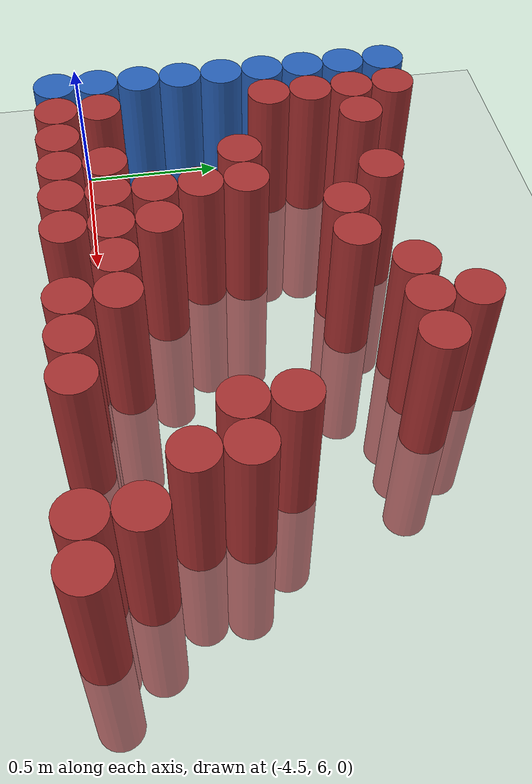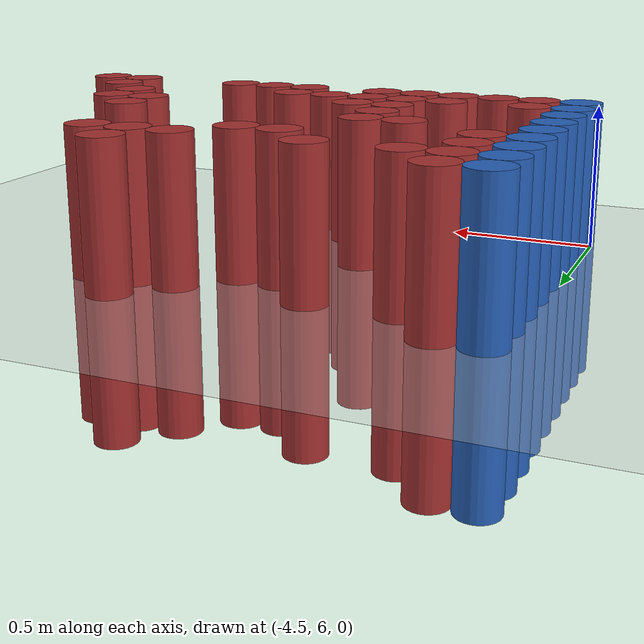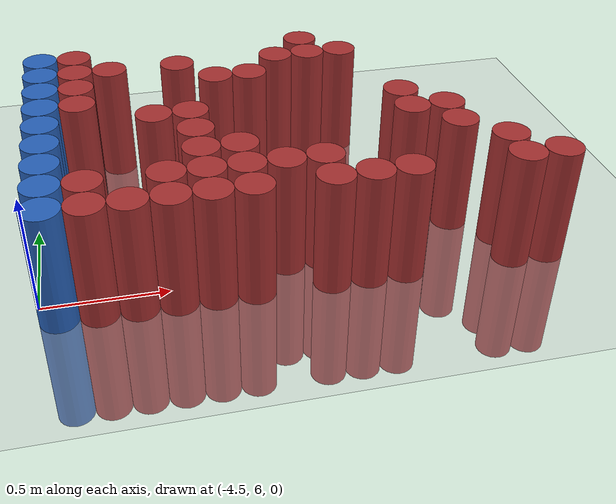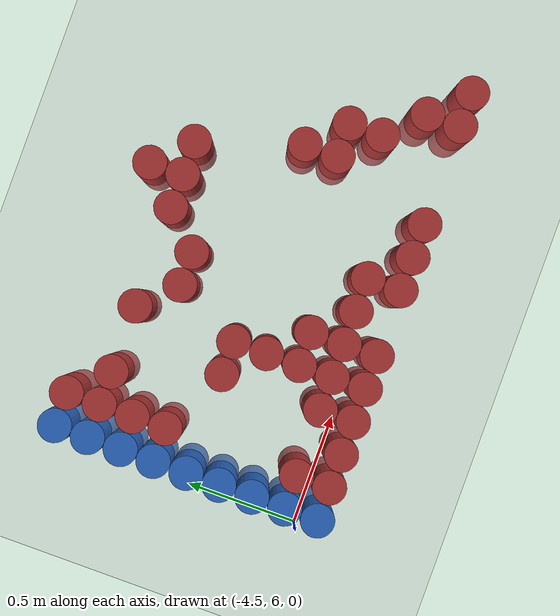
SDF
<sdf version="1.6">
 <world name="default">
  <model name="ground_plane">
   <static>1</static>
   <link name="link">
    <collision name="collision">
     <geometry><plane><normal>0 0 1</normal><size>100 100</size></plane></geometry>
     <surface><friction><ode><mu>100</mu><mu2>50</mu2></ode></friction></surface>
    </collision>
    <visual name="visual">
     <cast_shadows>0</cast_shadows>
     <geometry><plane><normal>0 0 1</normal><size>100 100</size></plane></geometry>
     <material>
      <script><uri>file://media/materials/scripts/gazebo.material</uri><name>Gazebo/Grey</name></script>
     </material>
    </visual>
   </link>
  </model>
  <model name="unit_cylinder_101">
   <static>1</static>
   <pose>-4.425000 5.925000 0.000000 0.000000 0.000000 0.000000</pose>
   <link name="link">
    <inertial>
     <mass>1</mass>
     <inertia><ixx>0.145833</ixx><ixy>0</ixy><ixz>0</ixz><iyy>0.145833</iyy><iyz>0</iyz><izz>0.125</izz></inertia>
    </inertial>
    <collision name="collision">
     <geometry><cylinder><radius>0.075000</radius><length>1</length></cylinder></geometry>
    </collision>
    <visual name="visual">
     <geometry><cylinder><radius>0.075000</radius><length>1</length></cylinder></geometry>
     <material>
      <ambient>0.152000 0.379000 0.720000 1</ambient>
      <diffuse>0.152000 0.379000 0.720000 1</diffuse>
     </material>
     <material>
      <script><name>Gazebo/Grey</name><uri>file://media/materials/scripts/gazebo.material</uri></script>
     </material>
    </visual>
   </link>
  </model>
  <model name="unit_cylinder_102">
   <static>1</static>
   <pose>-4.425000 6.075000 0.000000 0.000000 0.000000 0.000000</pose>
   <link name="link">
    <inertial>
     <mass>1</mass>
     <inertia><ixx>0.145833</ixx><ixy>0</ixy><ixz>0</ixz><iyy>0.145833</iyy><iyz>0</iyz><izz>0.125</izz></inertia>
    </inertial>
    <collision name="collision">
     <geometry><cylinder><radius>0.075000</radius><length>1</length></cylinder></geometry>
    </collision>
    <visual name="visual">
     <geometry><cylinder><radius>0.075000</radius><length>1</length></cylinder></geometry>
     <material>
      <ambient>0.152000 0.379000 0.720000 1</ambient>
      <diffuse>0.152000 0.379000 0.720000 1</diffuse>
     </material>
     <material>
      <script><name>Gazebo/Grey</name><uri>file://media/materials/scripts/gazebo.material</uri></script>
     </material>
    </visual>
   </link>
  </model>
  <model name="unit_cylinder_103">
   <static>1</static>
   <pose>-4.425000 6.225000 0.000000 0.000000 0.000000 0.000000</pose>
   <link name="link">
    <inertial>
     <mass>1</mass>
     <inertia><ixx>0.145833</ixx><ixy>0</ixy><ixz>0</ixz><iyy>0.145833</iyy><iyz>0</iyz><izz>0.125</izz></inertia>
    </inertial>
    <collision name="collision">
     <geometry><cylinder><radius>0.075000</radius><length>1</length></cylinder></geometry>
    </collision>
    <visual name="visual">
     <geometry><cylinder><radius>0.075000</radius><length>1</length></cylinder></geometry>
     <material>
      <ambient>0.152000 0.379000 0.720000 1</ambient>
      <diffuse>0.152000 0.379000 0.720000 1</diffuse>
     </material>
     <material>
      <script><name>Gazebo/Grey</name><uri>file://media/materials/scripts/gazebo.material</uri></script>
     </material>
    </visual>
   </link>
  </model>
  <model name="unit_cylinder_104">
   <static>1</static>
   <pose>-4.425000 6.375000 0.000000 0.000000 0.000000 0.000000</pose>
   <link name="link">
    <inertial>
     <mass>1</mass>
     <inertia><ixx>0.145833</ixx><ixy>0</ixy><ixz>0</ixz><iyy>0.145833</iyy><iyz>0</iyz><izz>0.125</izz></inertia>
    </inertial>
    <collision name="collision">
     <geometry><cylinder><radius>0.075000</radius><length>1</length></cylinder></geometry>
    </collision>
    <visual name="visual">
     <geometry><cylinder><radius>0.075000</radius><length>1</length></cylinder></geometry>
     <material>
      <ambient>0.152000 0.379000 0.720000 1</ambient>
      <diffuse>0.152000 0.379000 0.720000 1</diffuse>
     </material>
     <material>
      <script><name>Gazebo/Grey</name><uri>file://media/materials/scripts/gazebo.material</uri></script>
     </material>
    </visual>
   </link>
  </model>
  <model name="unit_cylinder_105">
   <static>1</static>
   <pose>-4.425000 6.525000 0.000000 0.000000 0.000000 0.000000</pose>
   <link name="link">
    <inertial>
     <mass>1</mass>
     <inertia><ixx>0.145833</ixx><ixy>0</ixy><ixz>0</ixz><iyy>0.145833</iyy><iyz>0</iyz><izz>0.125</izz></inertia>
    </inertial>
    <collision name="collision">
     <geometry><cylinder><radius>0.075000</radius><length>1</length></cylinder></geometry>
    </collision>
    <visual name="visual">
     <geometry><cylinder><radius>0.075000</radius><length>1</length></cylinder></geometry>
     <material>
      <ambient>0.152000 0.379000 0.720000 1</ambient>
      <diffuse>0.152000 0.379000 0.720000 1</diffuse>
     </material>
     <material>
      <script><name>Gazebo/Grey</name><uri>file://media/materials/scripts/gazebo.material</uri></script>
     </material>
    </visual>
   </link>
  </model>
  <model name="unit_cylinder_106">
   <static>1</static>
   <pose>-4.425000 6.675000 0.000000 0.000000 0.000000 0.000000</pose>
   <link name="link">
    <inertial>
     <mass>1</mass>
     <inertia><ixx>0.145833</ixx><ixy>0</ixy><ixz>0</ixz><iyy>0.145833</iyy><iyz>0</iyz><izz>0.125</izz></inertia>
    </inertial>
    <collision name="collision">
     <geometry><cylinder><radius>0.075000</radius><length>1</length></cylinder></geometry>
    </collision>
    <visual name="visual">
     <geometry><cylinder><radius>0.075000</radius><length>1</length></cylinder></geometry>
     <material>
      <ambient>0.152000 0.379000 0.720000 1</ambient>
      <diffuse>0.152000 0.379000 0.720000 1</diffuse>
     </material>
     <material>
      <script><name>Gazebo/Grey</name><uri>file://media/materials/scripts/gazebo.material</uri></script>
     </material>
    </visual>
   </link>
  </model>
  <model name="unit_cylinder_107">
   <static>1</static>
   <pose>-4.425000 6.825000 0.000000 0.000000 0.000000 0.000000</pose>
   <link name="link">
    <inertial>
     <mass>1</mass>
     <inertia><ixx>0.145833</ixx><ixy>0</ixy><ixz>0</ixz><iyy>0.145833</iyy><iyz>0</iyz><izz>0.125</izz></inertia>
    </inertial>
    <collision name="collision">
     <geometry><cylinder><radius>0.075000</radius><length>1</length></cylinder></geometry>
    </collision>
    <visual name="visual">
     <geometry><cylinder><radius>0.075000</radius><length>1</length></cylinder></geometry>
     <material>
      <ambient>0.152000 0.379000 0.720000 1</ambient>
      <diffuse>0.152000 0.379000 0.720000 1</diffuse>
     </material>
     <material>
      <script><name>Gazebo/Grey</name><uri>file://media/materials/scripts/gazebo.material</uri></script>
     </material>
    </visual>
   </link>
  </model>
  <model name="unit_cylinder_108">
   <static>1</static>
   <pose>-4.425000 6.975000 0.000000 0.000000 0.000000 0.000000</pose>
   <link name="link">
    <inertial>
     <mass>1</mass>
     <inertia><ixx>0.145833</ixx><ixy>0</ixy><ixz>0</ixz><iyy>0.145833</iyy><iyz>0</iyz><izz>0.125</izz></inertia>
    </inertial>
    <collision name="collision">
     <geometry><cylinder><radius>0.075000</radius><length>1</length></cylinder></geometry>
    </collision>
    <visual name="visual">
     <geometry><cylinder><radius>0.075000</radius><length>1</length></cylinder></geometry>
     <material>
      <ambient>0.152000 0.379000 0.720000 1</ambient>
      <diffuse>0.152000 0.379000 0.720000 1</diffuse>
     </material>
     <material>
      <script><name>Gazebo/Grey</name><uri>file://media/materials/scripts/gazebo.material</uri></script>
     </material>
    </visual>
   </link>
  </model>
  <model name="unit_cylinder_109">
   <static>1</static>
   <pose>-4.425000 7.125000 0.000000 0.000000 0.000000 0.000000</pose>
   <link name="link">
    <inertial>
     <mass>1</mass>
     <inertia><ixx>0.145833</ixx><ixy>0</ixy><ixz>0</ixz><iyy>0.145833</iyy><iyz>0</iyz><izz>0.125</izz></inertia>
    </inertial>
    <collision name="collision">
     <geometry><cylinder><radius>0.075000</radius><length>1</length></cylinder></geometry>
    </collision>
    <visual name="visual">
     <geometry><cylinder><radius>0.075000</radius><length>1</length></cylinder></geometry>
     <material>
      <ambient>0.152000 0.379000 0.720000 1</ambient>
      <diffuse>0.152000 0.379000 0.720000 1</diffuse>
     </material>
     <material>
      <script><name>Gazebo/Grey</name><uri>file://media/materials/scripts/gazebo.material</uri></script>
     </material>
    </visual>
   </link>
  </model>
  <model name="unit_cylinder_130">
   <static>1</static>
   <pose>-4.275000 5.925000 0.000000 0.000000 0.000000 0.000000</pose>
   <link name="link">
    <inertial>
     <mass>1</mass>
     <inertia><ixx>0.145833</ixx><ixy>0</ixy><ixz>0</ixz><iyy>0.145833</iyy><iyz>0</iyz><izz>0.125</izz></inertia>
    </inertial>
    <collision name="collision">
     <geometry><cylinder><radius>0.075000</radius><length>1</length></cylinder></geometry>
    </collision>
    <visual name="visual">
     <geometry><cylinder><radius>0.075000</radius><length>1</length></cylinder></geometry>
     <material>
      <ambient>0.648000 0.192000 0.192000 1</ambient>
      <diffuse>0.648000 0.192000 0.192000 1</diffuse>
     </material>
     <material>
      <script><name>Gazebo/Grey</name><uri>file://media/materials/scripts/gazebo.material</uri></script>
     </material>
    </visual>
   </link>
  </model>
  <model name="unit_cylinder_131">
   <static>1</static>
   <pose>-4.275000 6.075000 0.000000 0.000000 0.000000 0.000000</pose>
   <link name="link">
    <inertial>
     <mass>1</mass>
     <inertia><ixx>0.145833</ixx><ixy>0</ixy><ixz>0</ixz><iyy>0.145833</iyy><iyz>0</iyz><izz>0.125</izz></inertia>
    </inertial>
    <collision name="collision">
     <geometry><cylinder><radius>0.075000</radius><length>1</length></cylinder></geometry>
    </collision>
    <visual name="visual">
     <geometry><cylinder><radius>0.075000</radius><length>1</length></cylinder></geometry>
     <material>
      <ambient>0.648000 0.192000 0.192000 1</ambient>
      <diffuse>0.648000 0.192000 0.192000 1</diffuse>
     </material>
     <material>
      <script><name>Gazebo/Grey</name><uri>file://media/materials/scripts/gazebo.material</uri></script>
     </material>
    </visual>
   </link>
  </model>
  <model name="unit_cylinder_132">
   <static>1</static>
   <pose>-4.275000 6.675000 0.000000 0.000000 0.000000 0.000000</pose>
   <link name="link">
    <inertial>
     <mass>1</mass>
     <inertia><ixx>0.145833</ixx><ixy>0</ixy><ixz>0</ixz><iyy>0.145833</iyy><iyz>0</iyz><izz>0.125</izz></inertia>
    </inertial>
    <collision name="collision">
     <geometry><cylinder><radius>0.075000</radius><length>1</length></cylinder></geometry>
    </collision>
    <visual name="visual">
     <geometry><cylinder><radius>0.075000</radius><length>1</length></cylinder></geometry>
     <material>
      <ambient>0.648000 0.192000 0.192000 1</ambient>
      <diffuse>0.648000 0.192000 0.192000 1</diffuse>
     </material>
     <material>
      <script><name>Gazebo/Grey</name><uri>file://media/materials/scripts/gazebo.material</uri></script>
     </material>
    </visual>
   </link>
  </model>
  <model name="unit_cylinder_133">
   <static>1</static>
   <pose>-4.275000 6.825000 0.000000 0.000000 0.000000 0.000000</pose>
   <link name="link">
    <inertial>
     <mass>1</mass>
     <inertia><ixx>0.145833</ixx><ixy>0</ixy><ixz>0</ixz><iyy>0.145833</iyy><iyz>0</iyz><izz>0.125</izz></inertia>
    </inertial>
    <collision name="collision">
     <geometry><cylinder><radius>0.075000</radius><length>1</length></cylinder></geometry>
    </collision>
    <visual name="visual">
     <geometry><cylinder><radius>0.075000</radius><length>1</length></cylinder></geometry>
     <material>
      <ambient>0.648000 0.192000 0.192000 1</ambient>
      <diffuse>0.648000 0.192000 0.192000 1</diffuse>
     </material>
     <material>
      <script><name>Gazebo/Grey</name><uri>file://media/materials/scripts/gazebo.material</uri></script>
     </material>
    </visual>
   </link>
  </model>
  <model name="unit_cylinder_134">
   <static>1</static>
   <pose>-4.275000 6.975000 0.000000 0.000000 0.000000 0.000000</pose>
   <link name="link">
    <inertial>
     <mass>1</mass>
     <inertia><ixx>0.145833</ixx><ixy>0</ixy><ixz>0</ixz><iyy>0.145833</iyy><iyz>0</iyz><izz>0.125</izz></inertia>
    </inertial>
    <collision name="collision">
     <geometry><cylinder><radius>0.075000</radius><length>1</length></cylinder></geometry>
    </collision>
    <visual name="visual">
     <geometry><cylinder><radius>0.075000</radius><length>1</length></cylinder></geometry>
     <material>
      <ambient>0.648000 0.192000 0.192000 1</ambient>
      <diffuse>0.648000 0.192000 0.192000 1</diffuse>
     </material>
     <material>
      <script><name>Gazebo/Grey</name><uri>file://media/materials/scripts/gazebo.material</uri></script>
     </material>
    </visual>
   </link>
  </model>
  <model name="unit_cylinder_135">
   <static>1</static>
   <pose>-4.275000 7.125000 0.000000 0.000000 0.000000 0.000000</pose>
   <link name="link">
    <inertial>
     <mass>1</mass>
     <inertia><ixx>0.145833</ixx><ixy>0</ixy><ixz>0</ixz><iyy>0.145833</iyy><iyz>0</iyz><izz>0.125</izz></inertia>
    </inertial>
    <collision name="collision">
     <geometry><cylinder><radius>0.075000</radius><length>1</length></cylinder></geometry>
    </collision>
    <visual name="visual">
     <geometry><cylinder><radius>0.075000</radius><length>1</length></cylinder></geometry>
     <material>
      <ambient>0.648000 0.192000 0.192000 1</ambient>
      <diffuse>0.648000 0.192000 0.192000 1</diffuse>
     </material>
     <material>
      <script><name>Gazebo/Grey</name><uri>file://media/materials/scripts/gazebo.material</uri></script>
     </material>
    </visual>
   </link>
  </model>
  <model name="unit_cylinder_147">
   <static>1</static>
   <pose>-4.125000 5.925000 0.000000 0.000000 0.000000 0.000000</pose>
   <link name="link">
    <inertial>
     <mass>1</mass>
     <inertia><ixx>0.145833</ixx><ixy>0</ixy><ixz>0</ixz><iyy>0.145833</iyy><iyz>0</iyz><izz>0.125</izz></inertia>
    </inertial>
    <collision name="collision">
     <geometry><cylinder><radius>0.075000</radius><length>1</length></cylinder></geometry>
    </collision>
    <visual name="visual">
     <geometry><cylinder><radius>0.075000</radius><length>1</length></cylinder></geometry>
     <material>
      <ambient>0.648000 0.192000 0.192000 1</ambient>
      <diffuse>0.648000 0.192000 0.192000 1</diffuse>
     </material>
     <material>
      <script><name>Gazebo/Grey</name><uri>file://media/materials/scripts/gazebo.material</uri></script>
     </material>
    </visual>
   </link>
  </model>
  <model name="unit_cylinder_148">
   <static>1</static>
   <pose>-4.125000 6.975000 0.000000 0.000000 0.000000 0.000000</pose>
   <link name="link">
    <inertial>
     <mass>1</mass>
     <inertia><ixx>0.145833</ixx><ixy>0</ixy><ixz>0</ixz><iyy>0.145833</iyy><iyz>0</iyz><izz>0.125</izz></inertia>
    </inertial>
    <collision name="collision">
     <geometry><cylinder><radius>0.075000</radius><length>1</length></cylinder></geometry>
    </collision>
    <visual name="visual">
     <geometry><cylinder><radius>0.075000</radius><length>1</length></cylinder></geometry>
     <material>
      <ambient>0.648000 0.192000 0.192000 1</ambient>
      <diffuse>0.648000 0.192000 0.192000 1</diffuse>
     </material>
     <material>
      <script><name>Gazebo/Grey</name><uri>file://media/materials/scripts/gazebo.material</uri></script>
     </material>
    </visual>
   </link>
  </model>
  <model name="unit_cylinder_154">
   <static>1</static>
   <pose>-3.975000 5.925000 0.000000 0.000000 0.000000 0.000000</pose>
   <link name="link">
    <inertial>
     <mass>1</mass>
     <inertia><ixx>0.145833</ixx><ixy>0</ixy><ixz>0</ixz><iyy>0.145833</iyy><iyz>0</iyz><izz>0.125</izz></inertia>
    </inertial>
    <collision name="collision">
     <geometry><cylinder><radius>0.075000</radius><length>1</length></cylinder></geometry>
    </collision>
    <visual name="visual">
     <geometry><cylinder><radius>0.075000</radius><length>1</length></cylinder></geometry>
     <material>
      <ambient>0.648000 0.192000 0.192000 1</ambient>
      <diffuse>0.648000 0.192000 0.192000 1</diffuse>
     </material>
     <material>
      <script><name>Gazebo/Grey</name><uri>file://media/materials/scripts/gazebo.material</uri></script>
     </material>
    </visual>
   </link>
  </model>
  <model name="unit_cylinder_155">
   <static>1</static>
   <pose>-3.975000 6.075000 0.000000 0.000000 0.000000 0.000000</pose>
   <link name="link">
    <inertial>
     <mass>1</mass>
     <inertia><ixx>0.145833</ixx><ixy>0</ixy><ixz>0</ixz><iyy>0.145833</iyy><iyz>0</iyz><izz>0.125</izz></inertia>
    </inertial>
    <collision name="collision">
     <geometry><cylinder><radius>0.075000</radius><length>1</length></cylinder></geometry>
    </collision>
    <visual name="visual">
     <geometry><cylinder><radius>0.075000</radius><length>1</length></cylinder></geometry>
     <material>
      <ambient>0.648000 0.192000 0.192000 1</ambient>
      <diffuse>0.648000 0.192000 0.192000 1</diffuse>
     </material>
     <material>
      <script><name>Gazebo/Grey</name><uri>file://media/materials/scripts/gazebo.material</uri></script>
     </material>
    </visual>
   </link>
  </model>
  <model name="unit_cylinder_156">
   <static>1</static>
   <pose>-3.975000 6.525000 0.000000 0.000000 0.000000 0.000000</pose>
   <link name="link">
    <inertial>
     <mass>1</mass>
     <inertia><ixx>0.145833</ixx><ixy>0</ixy><ixz>0</ixz><iyy>0.145833</iyy><iyz>0</iyz><izz>0.125</izz></inertia>
    </inertial>
    <collision name="collision">
     <geometry><cylinder><radius>0.075000</radius><length>1</length></cylinder></geometry>
    </collision>
    <visual name="visual">
     <geometry><cylinder><radius>0.075000</radius><length>1</length></cylinder></geometry>
     <material>
      <ambient>0.648000 0.192000 0.192000 1</ambient>
      <diffuse>0.648000 0.192000 0.192000 1</diffuse>
     </material>
     <material>
      <script><name>Gazebo/Grey</name><uri>file://media/materials/scripts/gazebo.material</uri></script>
     </material>
    </visual>
   </link>
  </model>
  <model name="unit_cylinder_160">
   <static>1</static>
   <pose>-3.825000 5.925000 0.000000 0.000000 0.000000 0.000000</pose>
   <link name="link">
    <inertial>
     <mass>1</mass>
     <inertia><ixx>0.145833</ixx><ixy>0</ixy><ixz>0</ixz><iyy>0.145833</iyy><iyz>0</iyz><izz>0.125</izz></inertia>
    </inertial>
    <collision name="collision">
     <geometry><cylinder><radius>0.075000</radius><length>1</length></cylinder></geometry>
    </collision>
    <visual name="visual">
     <geometry><cylinder><radius>0.075000</radius><length>1</length></cylinder></geometry>
     <material>
      <ambient>0.648000 0.192000 0.192000 1</ambient>
      <diffuse>0.648000 0.192000 0.192000 1</diffuse>
     </material>
     <material>
      <script><name>Gazebo/Grey</name><uri>file://media/materials/scripts/gazebo.material</uri></script>
     </material>
    </visual>
   </link>
  </model>
  <model name="unit_cylinder_161">
   <static>1</static>
   <pose>-3.825000 6.075000 0.000000 0.000000 0.000000 0.000000</pose>
   <link name="link">
    <inertial>
     <mass>1</mass>
     <inertia><ixx>0.145833</ixx><ixy>0</ixy><ixz>0</ixz><iyy>0.145833</iyy><iyz>0</iyz><izz>0.125</izz></inertia>
    </inertial>
    <collision name="collision">
     <geometry><cylinder><radius>0.075000</radius><length>1</length></cylinder></geometry>
    </collision>
    <visual name="visual">
     <geometry><cylinder><radius>0.075000</radius><length>1</length></cylinder></geometry>
     <material>
      <ambient>0.648000 0.192000 0.192000 1</ambient>
      <diffuse>0.648000 0.192000 0.192000 1</diffuse>
     </material>
     <material>
      <script><name>Gazebo/Grey</name><uri>file://media/materials/scripts/gazebo.material</uri></script>
     </material>
    </visual>
   </link>
  </model>
  <model name="unit_cylinder_162">
   <static>1</static>
   <pose>-3.825000 6.225000 0.000000 0.000000 0.000000 0.000000</pose>
   <link name="link">
    <inertial>
     <mass>1</mass>
     <inertia><ixx>0.145833</ixx><ixy>0</ixy><ixz>0</ixz><iyy>0.145833</iyy><iyz>0</iyz><izz>0.125</izz></inertia>
    </inertial>
    <collision name="collision">
     <geometry><cylinder><radius>0.075000</radius><length>1</length></cylinder></geometry>
    </collision>
    <visual name="visual">
     <geometry><cylinder><radius>0.075000</radius><length>1</length></cylinder></geometry>
     <material>
      <ambient>0.648000 0.192000 0.192000 1</ambient>
      <diffuse>0.648000 0.192000 0.192000 1</diffuse>
     </material>
     <material>
      <script><name>Gazebo/Grey</name><uri>file://media/materials/scripts/gazebo.material</uri></script>
     </material>
    </visual>
   </link>
  </model>
  <model name="unit_cylinder_163">
   <static>1</static>
   <pose>-3.825000 6.375000 0.000000 0.000000 0.000000 0.000000</pose>
   <link name="link">
    <inertial>
     <mass>1</mass>
     <inertia><ixx>0.145833</ixx><ixy>0</ixy><ixz>0</ixz><iyy>0.145833</iyy><iyz>0</iyz><izz>0.125</izz></inertia>
    </inertial>
    <collision name="collision">
     <geometry><cylinder><radius>0.075000</radius><length>1</length></cylinder></geometry>
    </collision>
    <visual name="visual">
     <geometry><cylinder><radius>0.075000</radius><length>1</length></cylinder></geometry>
     <material>
      <ambient>0.648000 0.192000 0.192000 1</ambient>
      <diffuse>0.648000 0.192000 0.192000 1</diffuse>
     </material>
     <material>
      <script><name>Gazebo/Grey</name><uri>file://media/materials/scripts/gazebo.material</uri></script>
     </material>
    </visual>
   </link>
  </model>
  <model name="unit_cylinder_164">
   <static>1</static>
   <pose>-3.825000 6.525000 0.000000 0.000000 0.000000 0.000000</pose>
   <link name="link">
    <inertial>
     <mass>1</mass>
     <inertia><ixx>0.145833</ixx><ixy>0</ixy><ixz>0</ixz><iyy>0.145833</iyy><iyz>0</iyz><izz>0.125</izz></inertia>
    </inertial>
    <collision name="collision">
     <geometry><cylinder><radius>0.075000</radius><length>1</length></cylinder></geometry>
    </collision>
    <visual name="visual">
     <geometry><cylinder><radius>0.075000</radius><length>1</length></cylinder></geometry>
     <material>
      <ambient>0.648000 0.192000 0.192000 1</ambient>
      <diffuse>0.648000 0.192000 0.192000 1</diffuse>
     </material>
     <material>
      <script><name>Gazebo/Grey</name><uri>file://media/materials/scripts/gazebo.material</uri></script>
     </material>
    </visual>
   </link>
  </model>
  <model name="unit_cylinder_165">
   <static>1</static>
   <pose>-3.825000 6.975000 0.000000 0.000000 0.000000 0.000000</pose>
   <link name="link">
    <inertial>
     <mass>1</mass>
     <inertia><ixx>0.145833</ixx><ixy>0</ixy><ixz>0</ixz><iyy>0.145833</iyy><iyz>0</iyz><izz>0.125</izz></inertia>
    </inertial>
    <collision name="collision">
     <geometry><cylinder><radius>0.075000</radius><length>1</length></cylinder></geometry>
    </collision>
    <visual name="visual">
     <geometry><cylinder><radius>0.075000</radius><length>1</length></cylinder></geometry>
     <material>
      <ambient>0.648000 0.192000 0.192000 1</ambient>
      <diffuse>0.648000 0.192000 0.192000 1</diffuse>
     </material>
     <material>
      <script><name>Gazebo/Grey</name><uri>file://media/materials/scripts/gazebo.material</uri></script>
     </material>
    </visual>
   </link>
  </model>
  <model name="unit_cylinder_167">
   <static>1</static>
   <pose>-3.675000 5.925000 0.000000 0.000000 0.000000 0.000000</pose>
   <link name="link">
    <inertial>
     <mass>1</mass>
     <inertia><ixx>0.145833</ixx><ixy>0</ixy><ixz>0</ixz><iyy>0.145833</iyy><iyz>0</iyz><izz>0.125</izz></inertia>
    </inertial>
    <collision name="collision">
     <geometry><cylinder><radius>0.075000</radius><length>1</length></cylinder></geometry>
    </collision>
    <visual name="visual">
     <geometry><cylinder><radius>0.075000</radius><length>1</length></cylinder></geometry>
     <material>
      <ambient>0.648000 0.192000 0.192000 1</ambient>
      <diffuse>0.648000 0.192000 0.192000 1</diffuse>
     </material>
     <material>
      <script><name>Gazebo/Grey</name><uri>file://media/materials/scripts/gazebo.material</uri></script>
     </material>
    </visual>
   </link>
  </model>
  <model name="unit_cylinder_168">
   <static>1</static>
   <pose>-3.675000 6.075000 0.000000 0.000000 0.000000 0.000000</pose>
   <link name="link">
    <inertial>
     <mass>1</mass>
     <inertia><ixx>0.145833</ixx><ixy>0</ixy><ixz>0</ixz><iyy>0.145833</iyy><iyz>0</iyz><izz>0.125</izz></inertia>
    </inertial>
    <collision name="collision">
     <geometry><cylinder><radius>0.075000</radius><length>1</length></cylinder></geometry>
    </collision>
    <visual name="visual">
     <geometry><cylinder><radius>0.075000</radius><length>1</length></cylinder></geometry>
     <material>
      <ambient>0.648000 0.192000 0.192000 1</ambient>
      <diffuse>0.648000 0.192000 0.192000 1</diffuse>
     </material>
     <material>
      <script><name>Gazebo/Grey</name><uri>file://media/materials/scripts/gazebo.material</uri></script>
     </material>
    </visual>
   </link>
  </model>
  <model name="unit_cylinder_169">
   <static>1</static>
   <pose>-3.675000 6.225000 0.000000 0.000000 0.000000 0.000000</pose>
   <link name="link">
    <inertial>
     <mass>1</mass>
     <inertia><ixx>0.145833</ixx><ixy>0</ixy><ixz>0</ixz><iyy>0.145833</iyy><iyz>0</iyz><izz>0.125</izz></inertia>
    </inertial>
    <collision name="collision">
     <geometry><cylinder><radius>0.075000</radius><length>1</length></cylinder></geometry>
    </collision>
    <visual name="visual">
     <geometry><cylinder><radius>0.075000</radius><length>1</length></cylinder></geometry>
     <material>
      <ambient>0.648000 0.192000 0.192000 1</ambient>
      <diffuse>0.648000 0.192000 0.192000 1</diffuse>
     </material>
     <material>
      <script><name>Gazebo/Grey</name><uri>file://media/materials/scripts/gazebo.material</uri></script>
     </material>
    </visual>
   </link>
  </model>
  <model name="unit_cylinder_170">
   <static>1</static>
   <pose>-3.675000 6.825000 0.000000 0.000000 0.000000 0.000000</pose>
   <link name="link">
    <inertial>
     <mass>1</mass>
     <inertia><ixx>0.145833</ixx><ixy>0</ixy><ixz>0</ixz><iyy>0.145833</iyy><iyz>0</iyz><izz>0.125</izz></inertia>
    </inertial>
    <collision name="collision">
     <geometry><cylinder><radius>0.075000</radius><length>1</length></cylinder></geometry>
    </collision>
    <visual name="visual">
     <geometry><cylinder><radius>0.075000</radius><length>1</length></cylinder></geometry>
     <material>
      <ambient>0.648000 0.192000 0.192000 1</ambient>
      <diffuse>0.648000 0.192000 0.192000 1</diffuse>
     </material>
     <material>
      <script><name>Gazebo/Grey</name><uri>file://media/materials/scripts/gazebo.material</uri></script>
     </material>
    </visual>
   </link>
  </model>
  <model name="unit_cylinder_172">
   <static>1</static>
   <pose>-3.525000 6.075000 0.000000 0.000000 0.000000 0.000000</pose>
   <link name="link">
    <inertial>
     <mass>1</mass>
     <inertia><ixx>0.145833</ixx><ixy>0</ixy><ixz>0</ixz><iyy>0.145833</iyy><iyz>0</iyz><izz>0.125</izz></inertia>
    </inertial>
    <collision name="collision">
     <geometry><cylinder><radius>0.075000</radius><length>1</length></cylinder></geometry>
    </collision>
    <visual name="visual">
     <geometry><cylinder><radius>0.075000</radius><length>1</length></cylinder></geometry>
     <material>
      <ambient>0.648000 0.192000 0.192000 1</ambient>
      <diffuse>0.648000 0.192000 0.192000 1</diffuse>
     </material>
     <material>
      <script><name>Gazebo/Grey</name><uri>file://media/materials/scripts/gazebo.material</uri></script>
     </material>
    </visual>
   </link>
  </model>
  <model name="unit_cylinder_173">
   <static>1</static>
   <pose>-3.525000 6.825000 0.000000 0.000000 0.000000 0.000000</pose>
   <link name="link">
    <inertial>
     <mass>1</mass>
     <inertia><ixx>0.145833</ixx><ixy>0</ixy><ixz>0</ixz><iyy>0.145833</iyy><iyz>0</iyz><izz>0.125</izz></inertia>
    </inertial>
    <collision name="collision">
     <geometry><cylinder><radius>0.075000</radius><length>1</length></cylinder></geometry>
    </collision>
    <visual name="visual">
     <geometry><cylinder><radius>0.075000</radius><length>1</length></cylinder></geometry>
     <material>
      <ambient>0.648000 0.192000 0.192000 1</ambient>
      <diffuse>0.648000 0.192000 0.192000 1</diffuse>
     </material>
     <material>
      <script><name>Gazebo/Grey</name><uri>file://media/materials/scripts/gazebo.material</uri></script>
     </material>
    </visual>
   </link>
  </model>
  <model name="unit_cylinder_175">
   <static>1</static>
   <pose>-3.375000 5.925000 0.000000 0.000000 0.000000 0.000000</pose>
   <link name="link">
    <inertial>
     <mass>1</mass>
     <inertia><ixx>0.145833</ixx><ixy>0</ixy><ixz>0</ixz><iyy>0.145833</iyy><iyz>0</iyz><izz>0.125</izz></inertia>
    </inertial>
    <collision name="collision">
     <geometry><cylinder><radius>0.075000</radius><length>1</length></cylinder></geometry>
    </collision>
    <visual name="visual">
     <geometry><cylinder><radius>0.075000</radius><length>1</length></cylinder></geometry>
     <material>
      <ambient>0.648000 0.192000 0.192000 1</ambient>
      <diffuse>0.648000 0.192000 0.192000 1</diffuse>
     </material>
     <material>
      <script><name>Gazebo/Grey</name><uri>file://media/materials/scripts/gazebo.material</uri></script>
     </material>
    </visual>
   </link>
  </model>
  <model name="unit_cylinder_176">
   <static>1</static>
   <pose>-3.375000 6.075000 0.000000 0.000000 0.000000 0.000000</pose>
   <link name="link">
    <inertial>
     <mass>1</mass>
     <inertia><ixx>0.145833</ixx><ixy>0</ixy><ixz>0</ixz><iyy>0.145833</iyy><iyz>0</iyz><izz>0.125</izz></inertia>
    </inertial>
    <collision name="collision">
     <geometry><cylinder><radius>0.075000</radius><length>1</length></cylinder></geometry>
    </collision>
    <visual name="visual">
     <geometry><cylinder><radius>0.075000</radius><length>1</length></cylinder></geometry>
     <material>
      <ambient>0.648000 0.192000 0.192000 1</ambient>
      <diffuse>0.648000 0.192000 0.192000 1</diffuse>
     </material>
     <material>
      <script><name>Gazebo/Grey</name><uri>file://media/materials/scripts/gazebo.material</uri></script>
     </material>
    </visual>
   </link>
  </model>
  <model name="unit_cylinder_177">
   <static>1</static>
   <pose>-3.375000 6.975000 0.000000 0.000000 0.000000 0.000000</pose>
   <link name="link">
    <inertial>
     <mass>1</mass>
     <inertia><ixx>0.145833</ixx><ixy>0</ixy><ixz>0</ixz><iyy>0.145833</iyy><iyz>0</iyz><izz>0.125</izz></inertia>
    </inertial>
    <collision name="collision">
     <geometry><cylinder><radius>0.075000</radius><length>1</length></cylinder></geometry>
    </collision>
    <visual name="visual">
     <geometry><cylinder><radius>0.075000</radius><length>1</length></cylinder></geometry>
     <material>
      <ambient>0.648000 0.192000 0.192000 1</ambient>
      <diffuse>0.648000 0.192000 0.192000 1</diffuse>
     </material>
     <material>
      <script><name>Gazebo/Grey</name><uri>file://media/materials/scripts/gazebo.material</uri></script>
     </material>
    </visual>
   </link>
  </model>
  <model name="unit_cylinder_179">
   <static>1</static>
   <pose>-3.225000 5.925000 0.000000 0.000000 0.000000 0.000000</pose>
   <link name="link">
    <inertial>
     <mass>1</mass>
     <inertia><ixx>0.145833</ixx><ixy>0</ixy><ixz>0</ixz><iyy>0.145833</iyy><iyz>0</iyz><izz>0.125</izz></inertia>
    </inertial>
    <collision name="collision">
     <geometry><cylinder><radius>0.075000</radius><length>1</length></cylinder></geometry>
    </collision>
    <visual name="visual">
     <geometry><cylinder><radius>0.075000</radius><length>1</length></cylinder></geometry>
     <material>
      <ambient>0.648000 0.192000 0.192000 1</ambient>
      <diffuse>0.648000 0.192000 0.192000 1</diffuse>
     </material>
     <material>
      <script><name>Gazebo/Grey</name><uri>file://media/materials/scripts/gazebo.material</uri></script>
     </material>
    </visual>
   </link>
  </model>
  <model name="unit_cylinder_180">
   <static>1</static>
   <pose>-3.225000 6.975000 0.000000 0.000000 0.000000 0.000000</pose>
   <link name="link">
    <inertial>
     <mass>1</mass>
     <inertia><ixx>0.145833</ixx><ixy>0</ixy><ixz>0</ixz><iyy>0.145833</iyy><iyz>0</iyz><izz>0.125</izz></inertia>
    </inertial>
    <collision name="collision">
     <geometry><cylinder><radius>0.075000</radius><length>1</length></cylinder></geometry>
    </collision>
    <visual name="visual">
     <geometry><cylinder><radius>0.075000</radius><length>1</length></cylinder></geometry>
     <material>
      <ambient>0.648000 0.192000 0.192000 1</ambient>
      <diffuse>0.648000 0.192000 0.192000 1</diffuse>
     </material>
     <material>
      <script><name>Gazebo/Grey</name><uri>file://media/materials/scripts/gazebo.material</uri></script>
     </material>
    </visual>
   </link>
  </model>
  <model name="unit_cylinder_181">
   <static>1</static>
   <pose>-3.225000 7.125000 0.000000 0.000000 0.000000 0.000000</pose>
   <link name="link">
    <inertial>
     <mass>1</mass>
     <inertia><ixx>0.145833</ixx><ixy>0</ixy><ixz>0</ixz><iyy>0.145833</iyy><iyz>0</iyz><izz>0.125</izz></inertia>
    </inertial>
    <collision name="collision">
     <geometry><cylinder><radius>0.075000</radius><length>1</length></cylinder></geometry>
    </collision>
    <visual name="visual">
     <geometry><cylinder><radius>0.075000</radius><length>1</length></cylinder></geometry>
     <material>
      <ambient>0.648000 0.192000 0.192000 1</ambient>
      <diffuse>0.648000 0.192000 0.192000 1</diffuse>
     </material>
     <material>
      <script><name>Gazebo/Grey</name><uri>file://media/materials/scripts/gazebo.material</uri></script>
     </material>
    </visual>
   </link>
  </model>
  <model name="unit_cylinder_184">
   <static>1</static>
   <pose>-3.075000 5.925000 0.000000 0.000000 0.000000 0.000000</pose>
   <link name="link">
    <inertial>
     <mass>1</mass>
     <inertia><ixx>0.145833</ixx><ixy>0</ixy><ixz>0</ixz><iyy>0.145833</iyy><iyz>0</iyz><izz>0.125</izz></inertia>
    </inertial>
    <collision name="collision">
     <geometry><cylinder><radius>0.075000</radius><length>1</length></cylinder></geometry>
    </collision>
    <visual name="visual">
     <geometry><cylinder><radius>0.075000</radius><length>1</length></cylinder></geometry>
     <material>
      <ambient>0.648000 0.192000 0.192000 1</ambient>
      <diffuse>0.648000 0.192000 0.192000 1</diffuse>
     </material>
     <material>
      <script><name>Gazebo/Grey</name><uri>file://media/materials/scripts/gazebo.material</uri></script>
     </material>
    </visual>
   </link>
  </model>
  <model name="unit_cylinder_185">
   <static>1</static>
   <pose>-3.075000 6.975000 0.000000 0.000000 0.000000 0.000000</pose>
   <link name="link">
    <inertial>
     <mass>1</mass>
     <inertia><ixx>0.145833</ixx><ixy>0</ixy><ixz>0</ixz><iyy>0.145833</iyy><iyz>0</iyz><izz>0.125</izz></inertia>
    </inertial>
    <collision name="collision">
     <geometry><cylinder><radius>0.075000</radius><length>1</length></cylinder></geometry>
    </collision>
    <visual name="visual">
     <geometry><cylinder><radius>0.075000</radius><length>1</length></cylinder></geometry>
     <material>
      <ambient>0.648000 0.192000 0.192000 1</ambient>
      <diffuse>0.648000 0.192000 0.192000 1</diffuse>
     </material>
     <material>
      <script><name>Gazebo/Grey</name><uri>file://media/materials/scripts/gazebo.material</uri></script>
     </material>
    </visual>
   </link>
  </model>
  <model name="unit_cylinder_191">
   <static>1</static>
   <pose>-2.925000 6.375000 0.000000 0.000000 0.000000 0.000000</pose>
   <link name="link">
    <inertial>
     <mass>1</mass>
     <inertia><ixx>0.145833</ixx><ixy>0</ixy><ixz>0</ixz><iyy>0.145833</iyy><iyz>0</iyz><izz>0.125</izz></inertia>
    </inertial>
    <collision name="collision">
     <geometry><cylinder><radius>0.075000</radius><length>1</length></cylinder></geometry>
    </collision>
    <visual name="visual">
     <geometry><cylinder><radius>0.075000</radius><length>1</length></cylinder></geometry>
     <material>
      <ambient>0.648000 0.192000 0.192000 1</ambient>
      <diffuse>0.648000 0.192000 0.192000 1</diffuse>
     </material>
     <material>
      <script><name>Gazebo/Grey</name><uri>file://media/materials/scripts/gazebo.material</uri></script>
     </material>
    </visual>
   </link>
  </model>
  <model name="unit_cylinder_192">
   <static>1</static>
   <pose>-2.925000 6.525000 0.000000 0.000000 0.000000 0.000000</pose>
   <link name="link">
    <inertial>
     <mass>1</mass>
     <inertia><ixx>0.145833</ixx><ixy>0</ixy><ixz>0</ixz><iyy>0.145833</iyy><iyz>0</iyz><izz>0.125</izz></inertia>
    </inertial>
    <collision name="collision">
     <geometry><cylinder><radius>0.075000</radius><length>1</length></cylinder></geometry>
    </collision>
    <visual name="visual">
     <geometry><cylinder><radius>0.075000</radius><length>1</length></cylinder></geometry>
     <material>
      <ambient>0.648000 0.192000 0.192000 1</ambient>
      <diffuse>0.648000 0.192000 0.192000 1</diffuse>
     </material>
     <material>
      <script><name>Gazebo/Grey</name><uri>file://media/materials/scripts/gazebo.material</uri></script>
     </material>
    </visual>
   </link>
  </model>
  <model name="unit_cylinder_201">
   <static>1</static>
   <pose>-2.775000 6.225000 0.000000 0.000000 0.000000 0.000000</pose>
   <link name="link">
    <inertial>
     <mass>1</mass>
     <inertia><ixx>0.145833</ixx><ixy>0</ixy><ixz>0</ixz><iyy>0.145833</iyy><iyz>0</iyz><izz>0.125</izz></inertia>
    </inertial>
    <collision name="collision">
     <geometry><cylinder><radius>0.075000</radius><length>1</length></cylinder></geometry>
    </collision>
    <visual name="visual">
     <geometry><cylinder><radius>0.075000</radius><length>1</length></cylinder></geometry>
     <material>
      <ambient>0.648000 0.192000 0.192000 1</ambient>
      <diffuse>0.648000 0.192000 0.192000 1</diffuse>
     </material>
     <material>
      <script><name>Gazebo/Grey</name><uri>file://media/materials/scripts/gazebo.material</uri></script>
     </material>
    </visual>
   </link>
  </model>
  <model name="unit_cylinder_202">
   <static>1</static>
   <pose>-2.775000 6.375000 0.000000 0.000000 0.000000 0.000000</pose>
   <link name="link">
    <inertial>
     <mass>1</mass>
     <inertia><ixx>0.145833</ixx><ixy>0</ixy><ixz>0</ixz><iyy>0.145833</iyy><iyz>0</iyz><izz>0.125</izz></inertia>
    </inertial>
    <collision name="collision">
     <geometry><cylinder><radius>0.075000</radius><length>1</length></cylinder></geometry>
    </collision>
    <visual name="visual">
     <geometry><cylinder><radius>0.075000</radius><length>1</length></cylinder></geometry>
     <material>
      <ambient>0.648000 0.192000 0.192000 1</ambient>
      <diffuse>0.648000 0.192000 0.192000 1</diffuse>
     </material>
     <material>
      <script><name>Gazebo/Grey</name><uri>file://media/materials/scripts/gazebo.material</uri></script>
     </material>
    </visual>
   </link>
  </model>
  <model name="unit_cylinder_208">
   <static>1</static>
   <pose>-2.625000 5.925000 0.000000 0.000000 0.000000 0.000000</pose>
   <link name="link">
    <inertial>
     <mass>1</mass>
     <inertia><ixx>0.145833</ixx><ixy>0</ixy><ixz>0</ixz><iyy>0.145833</iyy><iyz>0</iyz><izz>0.125</izz></inertia>
    </inertial>
    <collision name="collision">
     <geometry><cylinder><radius>0.075000</radius><length>1</length></cylinder></geometry>
    </collision>
    <visual name="visual">
     <geometry><cylinder><radius>0.075000</radius><length>1</length></cylinder></geometry>
     <material>
      <ambient>0.648000 0.192000 0.192000 1</ambient>
      <diffuse>0.648000 0.192000 0.192000 1</diffuse>
     </material>
     <material>
      <script><name>Gazebo/Grey</name><uri>file://media/materials/scripts/gazebo.material</uri></script>
     </material>
    </visual>
   </link>
  </model>
  <model name="unit_cylinder_209">
   <static>1</static>
   <pose>-2.625000 6.075000 0.000000 0.000000 0.000000 0.000000</pose>
   <link name="link">
    <inertial>
     <mass>1</mass>
     <inertia><ixx>0.145833</ixx><ixy>0</ixy><ixz>0</ixz><iyy>0.145833</iyy><iyz>0</iyz><izz>0.125</izz></inertia>
    </inertial>
    <collision name="collision">
     <geometry><cylinder><radius>0.075000</radius><length>1</length></cylinder></geometry>
    </collision>
    <visual name="visual">
     <geometry><cylinder><radius>0.075000</radius><length>1</length></cylinder></geometry>
     <material>
      <ambient>0.648000 0.192000 0.192000 1</ambient>
      <diffuse>0.648000 0.192000 0.192000 1</diffuse>
     </material>
     <material>
      <script><name>Gazebo/Grey</name><uri>file://media/materials/scripts/gazebo.material</uri></script>
     </material>
    </visual>
   </link>
  </model>
  <model name="unit_cylinder_212">
   <static>1</static>
   <pose>-2.475000 5.925000 0.000000 0.000000 0.000000 0.000000</pose>
   <link name="link">
    <inertial>
     <mass>1</mass>
     <inertia><ixx>0.145833</ixx><ixy>0</ixy><ixz>0</ixz><iyy>0.145833</iyy><iyz>0</iyz><izz>0.125</izz></inertia>
    </inertial>
    <collision name="collision">
     <geometry><cylinder><radius>0.075000</radius><length>1</length></cylinder></geometry>
    </collision>
    <visual name="visual">
     <geometry><cylinder><radius>0.075000</radius><length>1</length></cylinder></geometry>
     <material>
      <ambient>0.648000 0.192000 0.192000 1</ambient>
      <diffuse>0.648000 0.192000 0.192000 1</diffuse>
     </material>
     <material>
      <script><name>Gazebo/Grey</name><uri>file://media/materials/scripts/gazebo.material</uri></script>
     </material>
    </visual>
   </link>
  </model>
 </world>
</sdf>
